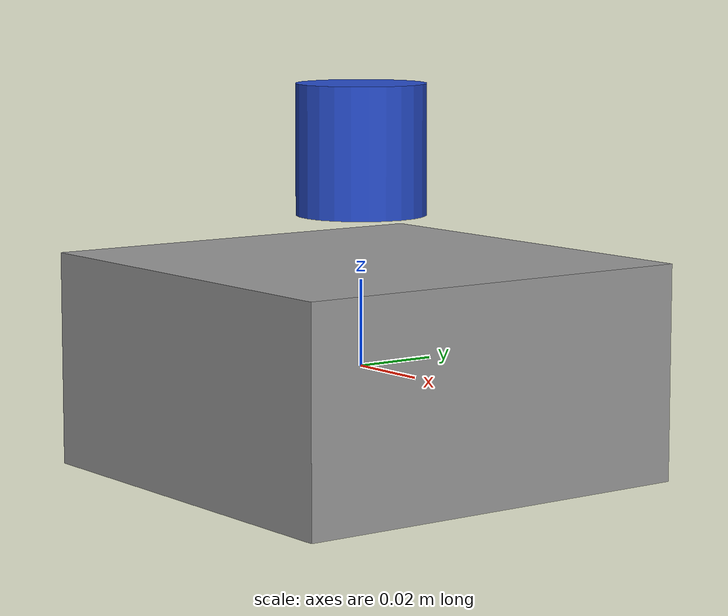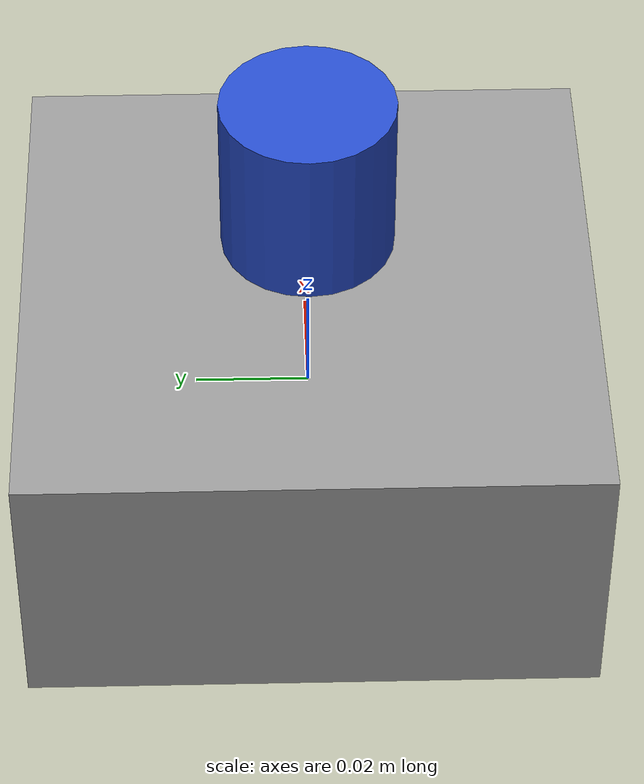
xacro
<?xml version="1.0"?>
<robot xmlns:xacro="http://www.ros.org/wiki/xacro" name="ev3_robot">

  <!-- === Base link === -->
  <link name="base_link">
    <inertial>
      <mass value="1.0"/>
      <origin xyz="0 0 0" rpy="0 0 0"/>
      <inertia ixx="0.01" ixy="0.0" ixz="0.0" iyy="0.01" iyz="0.0" izz="0.01"/>
    </inertial>
    <visual>
      <geometry>
        <box size="0.1 0.1 0.05"/>
      </geometry>
      <material name="gray"/>
    </visual>
    <collision>
      <geometry>
        <box size="0.1 0.1 0.05"/>
      </geometry>
    </collision>
  </link>

  <!-- === Gyro sensor link === -->
  <link name="gyro_link">
    <inertial>
      <mass value="0.05"/>
      <origin xyz="0 0 0" rpy="0 0 0"/>
      <inertia ixx="0.001" ixy="0.0" ixz="0.0" iyy="0.001" iyz="0.0" izz="0.001"/>
    </inertial>
    <visual>
      <geometry>
        <cylinder radius="0.015" length="0.03"/>
      </geometry>
      <material name="blue"/>
    </visual>
    <collision>
      <geometry>
        <cylinder radius="0.015" length="0.03"/>
      </geometry>
    </collision>
  </link>

  <!-- === Fixed joint from base to gyro === -->
  <joint name="gyro_joint" type="fixed">
    <parent link="base_link"/>
    <child link="gyro_link"/>
    <origin xyz="0 0 0.05" rpy="0 0 0"/>
  </joint>

  <!-- === ROS2 Control Hardware Interface === -->
  <transmission name="gyro_transmission">
    <type>transmission_interface/SimpleTransmission</type>
    <joint name="gyro_joint"/>
    <hardwareInterface>hardware_interface/StateInterface</hardwareInterface>
  </transmission>

</robot>
